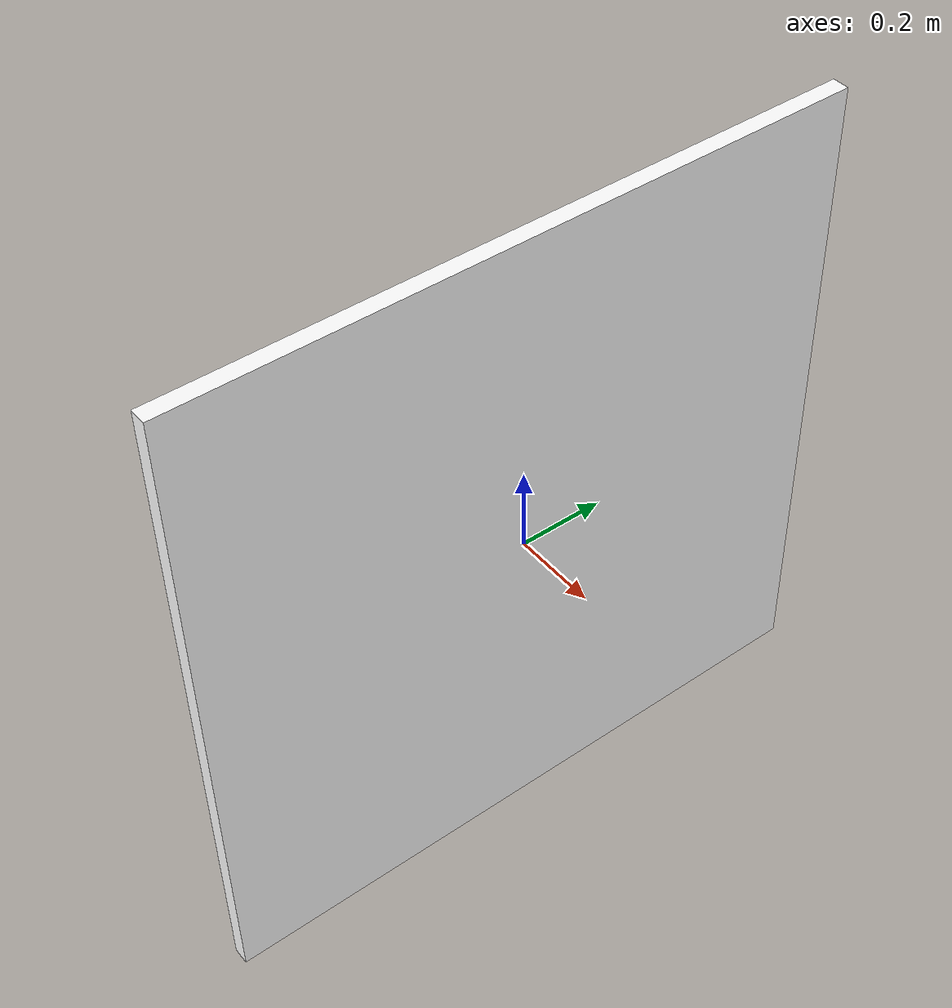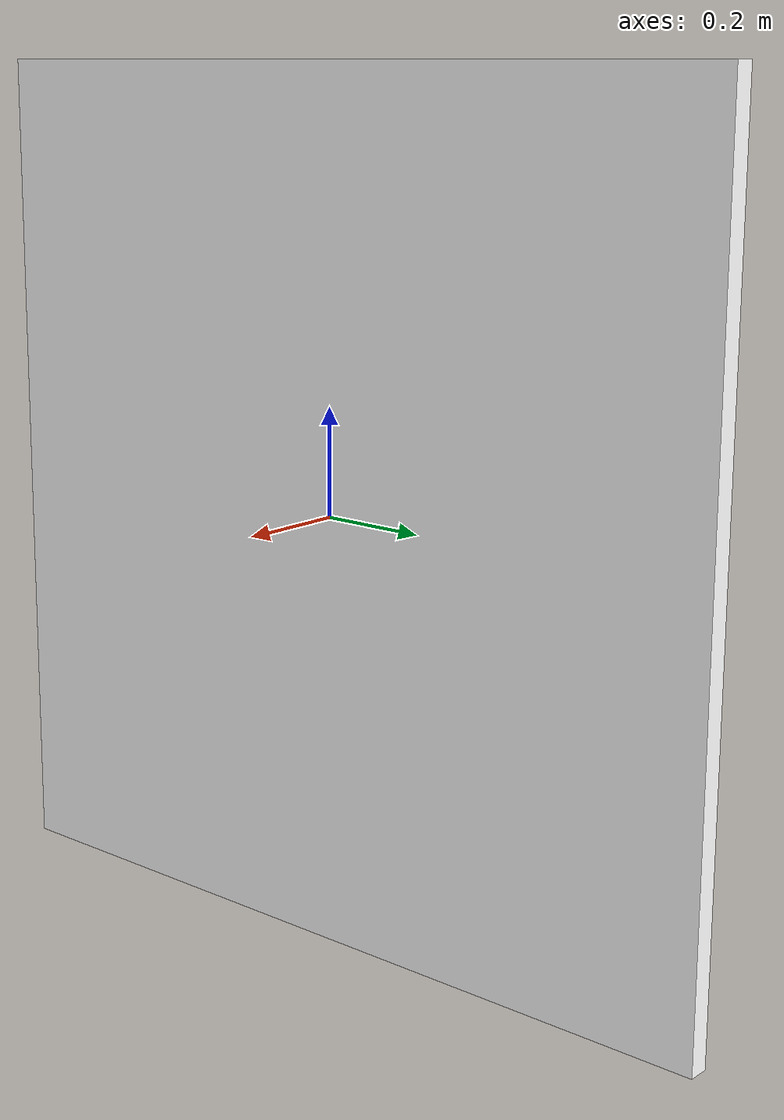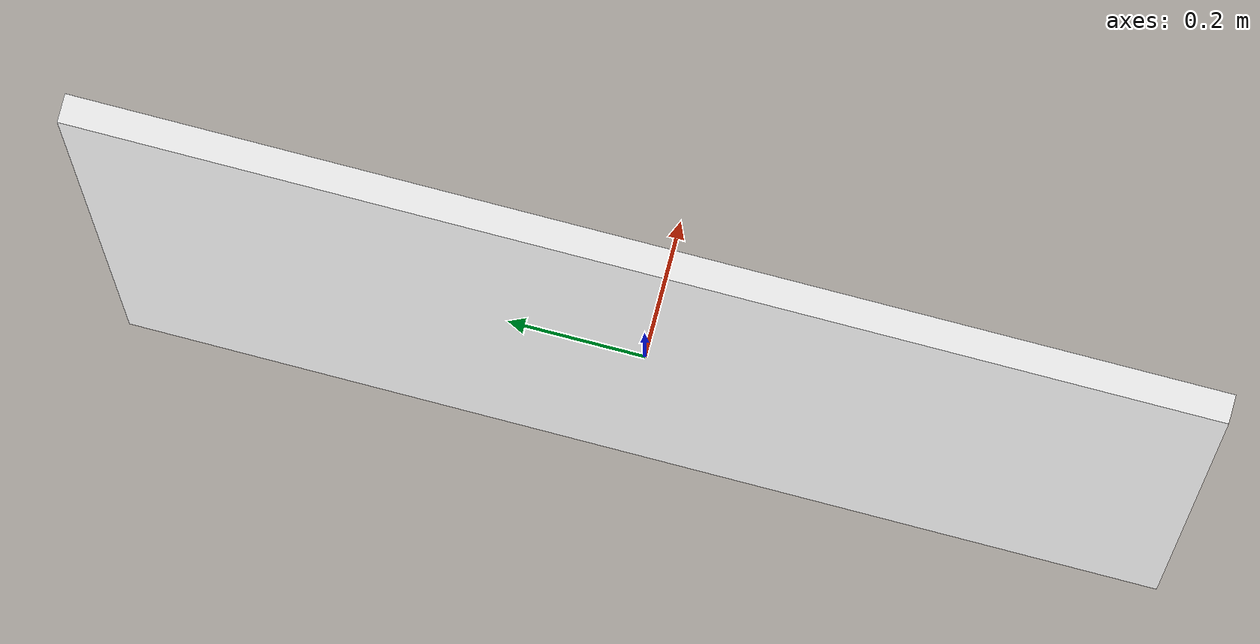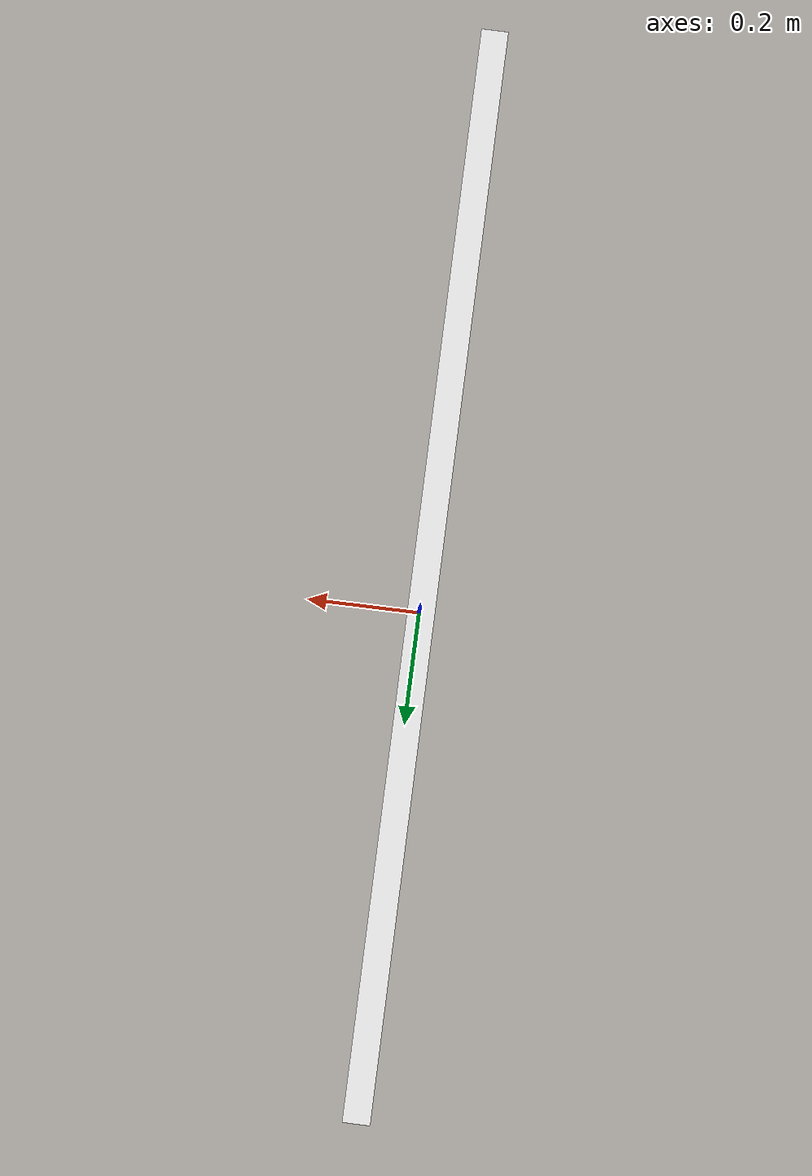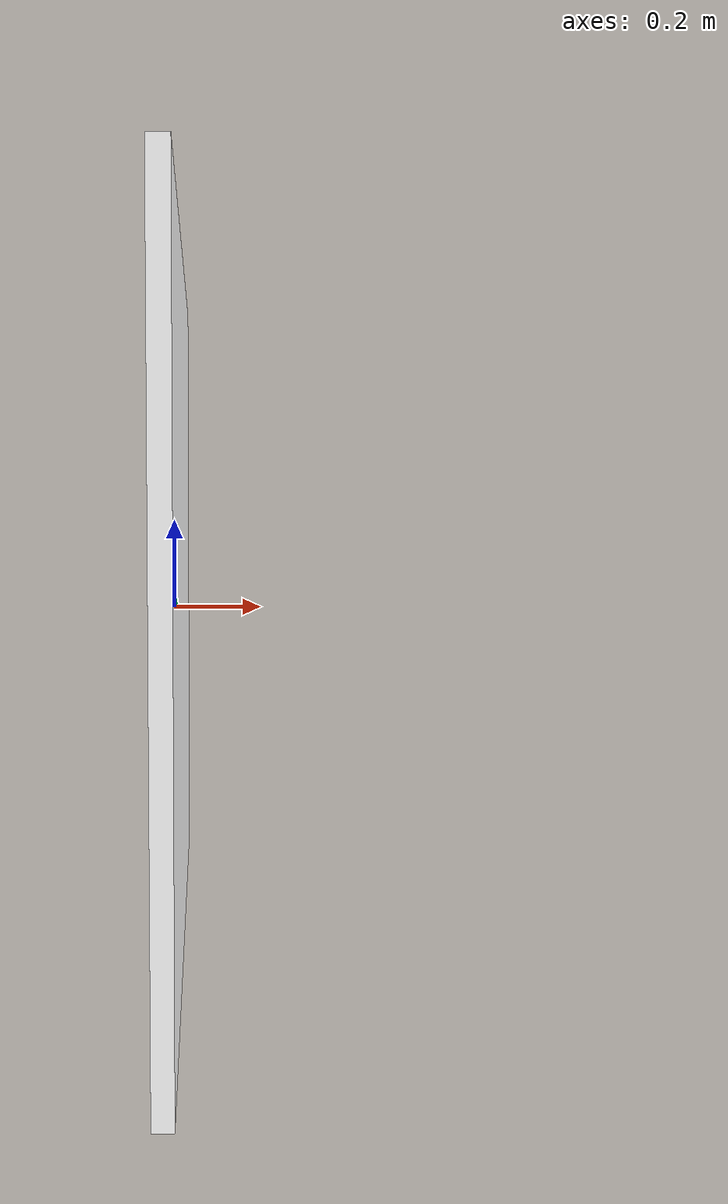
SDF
<?xml version="1.0"?>
<sdf version="1.6">
  <model name="stop_sign_poster">
    <static>true</static>
    <link name="poster">
      <visual name="poster_visual">
        <pose>0 0 0 0 0 0</pose>
        <geometry>
          <box>
            <size>0.04 1.6 1.6</size>
          </box>
        </geometry>
        <material>
          <ambient>1.0 1.0 1.0 1</ambient>
          <diffuse>1.0 1.0 1.0 1</diffuse>
          <script>
            <uri>model://stop_sign_poster/materials/scripts</uri>
            <uri>model://stop_sign_poster/materials/textures</uri>
            <name>StopSignPoster</name>
          </script>
        </material>
      </visual>
      <collision name="poster_collision">
        <pose>0 0 0 0 0 0</pose>
        <geometry>
          <box>
            <size>0.04 1.6 1.6</size>
          </box>
        </geometry>
      </collision>
    </link>
  </model>
</sdf>
